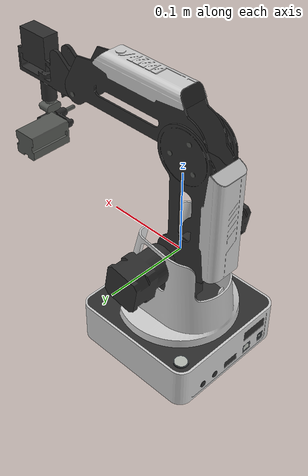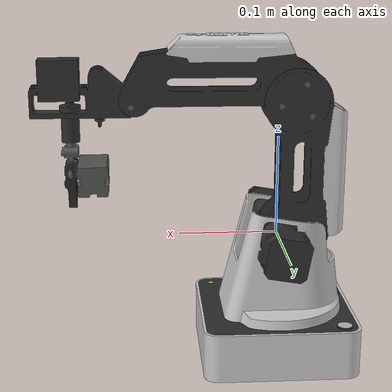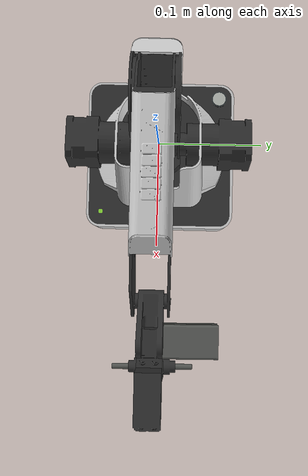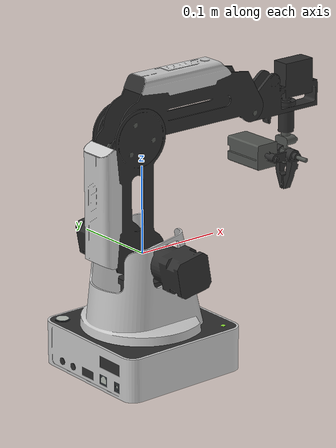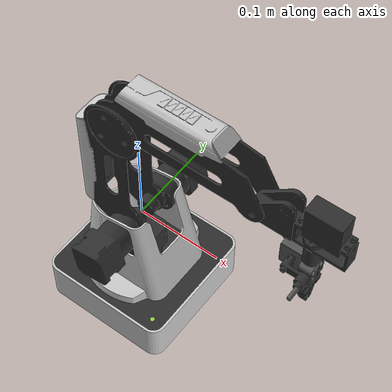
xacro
<?xml version="1.0"?>
<robot name="$(arg name)" xmlns:xacro="http://www.ros.org/wiki/xacro">

  <xacro:arg name="name" default="dobot_magician"/>
  <xacro:arg name="prefix" default=""/>
  <xacro:arg name="use_fake_hardware" default="false"/>
  <xacro:arg name="sim_gazebo" default="false"/>
  <xacro:arg name="sim_gz" default="true"/>
  <xacro:arg name="simulation_controllers" default=""/>
  <xacro:arg name="end_effector" default="gripper"/>

  <xacro:include filename="$(find custom_robots)/models/dobot_magician/dobot_magician_macro.xacro"/>
  <xacro:include filename="$(find custom_robots)/models/dobot_magician/dobot_magician.ros2_control.xacro"/>

  <!-- fixed base, anchor it to the world so it doesn't fall under gravity -->
  <link name="world"/>

  <xacro:dobot_magician parent="world" prefix="$(arg prefix)" end_effector="$(arg end_effector)"/>

  <xacro:dobot_magician_ros2_control
    name="$(arg name)"
    prefix="$(arg prefix)"
    sim_gz="$(arg sim_gz)"
    use_fake_hardware="$(arg use_fake_hardware)"
    end_effector="$(arg end_effector)"/>

  <xacro:if value="$(arg sim_gz)">
    <gazebo>
      <plugin filename="gz_ros2_control-system" name="gz_ros2_control::GazeboSimROS2ControlPlugin">
        <parameters>$(arg simulation_controllers)</parameters>
      </plugin>
    </gazebo>
  </xacro:if>

</robot>

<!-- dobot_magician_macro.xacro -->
<robot xmlns:xacro="http://www.ros.org/wiki/xacro">

  <xacro:property name="link_base_length" value="0.131305"/>
  <xacro:property name="link_2_length" value="0.135"/>
  <xacro:property name="link_3_length" value="0.147"/>
  <xacro:property name="link_4_length" value="0.06"/>

  <xacro:property name="joint_2_offset" value="${20.0/180.0*pi}"/>
  <xacro:property name="joint_3_offset" value="${7.0/180.0*pi}"/>

  <!-- The real meshes don't ship inertia data, so every link gets a plain
       box approximation sized roughly to it. Good enough for stable
       simulation, not meant to be an accurate mass model. -->
  <xacro:macro name="box_inertial" params="mass x y z">
    <inertial>
      <mass value="${mass}"/>
      <inertia
        ixx="${mass/12.0*(y*y+z*z)}" ixy="0.0" ixz="0.0"
        iyy="${mass/12.0*(x*x+z*z)}" iyz="0.0"
        izz="${mass/12.0*(x*x+y*y)}"/>
    </inertial>
  </xacro:macro>

  <xacro:macro name="dobot_armlink" params="link_name visual_mesh collision_mesh base_origin_xyz base_origin_rpy mass box_x box_y box_z">
    <link name="${link_name}">
      <visual>
        <origin xyz="${base_origin_xyz}" rpy="${base_origin_rpy}"/>
        <geometry>
          <mesh filename="package://custom_robots/models/dobot_magician/meshes/visual/${visual_mesh}.dae"/>
        </geometry>
      </visual>
      <collision>
        <origin xyz="${base_origin_xyz}" rpy="${base_origin_rpy}"/>
        <geometry>
          <mesh filename="package://custom_robots/models/dobot_magician/meshes/collision/${collision_mesh}.stl"/>
        </geometry>
      </collision>
      <xacro:box_inertial mass="${mass}" x="${box_x}" y="${box_y}" z="${box_z}"/>
    </link>
  </xacro:macro>

  <xacro:macro name="dobot_armlink_box_collision" params="link_name visual_mesh base_origin_xyz base_origin_rpy mass box_x box_y box_z collision_origin_xyz collision_size">
    <link name="${link_name}">
      <visual>
        <origin xyz="${base_origin_xyz}" rpy="${base_origin_rpy}"/>
        <geometry>
          <mesh filename="package://custom_robots/models/dobot_magician/meshes/visual/${visual_mesh}.dae"/>
        </geometry>
      </visual>
      <collision>
        <origin xyz="${collision_origin_xyz}" rpy="${base_origin_rpy}"/>
        <geometry>
          <box size="${collision_size}"/>
        </geometry>
      </collision>
      <xacro:box_inertial mass="${mass}" x="${box_x}" y="${box_y}" z="${box_z}"/>
    </link>
  </xacro:macro>

  <xacro:macro name="dobot_mimiclink" params="link_name">
    <link name="${link_name}">
      <!-- No collision here on purpose, a zero-size box asserts inside DART
           once physics is stepping. This link just tracks the parallelogram
           and never needs to collide with anything. -->
      <xacro:box_inertial mass="0.001" x="0.01" y="0.01" z="0.01"/>
    </link>
  </xacro:macro>

  <xacro:macro name="dobot_joint" params="joint_name type parent child axis_xyz origin_xyz origin_rpy lower_limit upper_limit">
    <joint name="${joint_name}" type="${type}">
      <parent link="${parent}"/>
      <child link="${child}"/>
      <axis xyz="${axis_xyz}"/>
      <limit effort="2000" velocity="1" lower="${lower_limit}" upper="${upper_limit}"/>
      <origin xyz="${origin_xyz}" rpy="${origin_rpy}"/>
      <dynamics damping="1.0" friction="0"/>
    </joint>
  </xacro:macro>

  <xacro:macro name="dobot_joint_mimic" params="joint_name type parent child axis_xyz origin_xyz origin_rpy lower_limit upper_limit ref_joint">
    <joint name="${joint_name}" type="${type}">
      <parent link="${parent}"/>
      <child link="${child}"/>
      <axis xyz="${axis_xyz}"/>
      <limit effort="2000" velocity="1" lower="${lower_limit}" upper="${upper_limit}"/>
      <origin xyz="${origin_xyz}" rpy="${origin_rpy}"/>
      <dynamics damping="1.0" friction="0"/>
      <mimic joint="${ref_joint}" multiplier="1" offset="0"/>
    </joint>
  </xacro:macro>

  <xacro:macro name="dobot_magician" params="parent prefix:='' end_effector:='gripper'">

    <xacro:dobot_armlink link_name="${prefix}base_link" visual_mesh="magicianBase" collision_mesh="magicianBase"
      base_origin_xyz="0 0 0" base_origin_rpy="0 0 0" mass="1.5" box_x="0.15" box_y="0.15" box_z="0.13"/>
    <joint name="${prefix}base_joint" type="fixed">
      <parent link="${parent}"/>
      <child link="${prefix}base_link"/>
      <origin xyz="0 0 0" rpy="0 0 0"/>
    </joint>

    <xacro:dobot_armlink link_name="${prefix}link_1" visual_mesh="magicianLink1" collision_mesh="magicianLink1"
      base_origin_xyz="0 0 0" base_origin_rpy="0 0 0" mass="0.3" box_x="0.06" box_y="0.06" box_z="0.1"/>
    <xacro:dobot_joint joint_name="${prefix}joint_1" type="revolute"
      parent="${prefix}base_link" child="${prefix}link_1"
      axis_xyz="0 0 1" origin_xyz="0 0 0" origin_rpy="0 0 0"
      lower_limit="${-125.0/180.0*pi}" upper_limit="${125.0/180.0*pi}"/>

    <xacro:dobot_armlink link_name="${prefix}link_2" visual_mesh="magicianLink2" collision_mesh="magicianLink2"
      base_origin_xyz="0 0 0" base_origin_rpy="0 ${-joint_2_offset} 0" mass="0.3" box_x="0.03" box_y="0.03" box_z="0.135"/>
    <xacro:dobot_joint joint_name="${prefix}joint_2" type="revolute"
      parent="${prefix}link_1" child="${prefix}link_2"
      axis_xyz="0 1 0" origin_xyz="0 0 0" origin_rpy="0 0 0"
      lower_limit="${-5.0/180.0*pi}" upper_limit="${90.0/180.0*pi}"/>

    <xacro:dobot_armlink link_name="${prefix}link_3" visual_mesh="magicianLink3" collision_mesh="magicianLink3"
      base_origin_xyz="${link_2_length*sin(joint_3_offset)} 0 ${-link_2_length+(link_2_length-link_2_length*cos(joint_3_offset))}"
      base_origin_rpy="0 ${-joint_2_offset-joint_3_offset} 0" mass="0.2" box_x="0.03" box_y="0.03" box_z="0.147"/>
    <xacro:dobot_joint joint_name="${prefix}joint_3" type="revolute"
      parent="${prefix}link_2" child="${prefix}link_3"
      axis_xyz="0 1 0" origin_xyz="0 0 ${link_2_length}" origin_rpy="0 0 0"
      lower_limit="${-15.0/180.0*pi}" upper_limit="${70.0/180.0*pi}"/>

    <!-- Parallelogram closure, no actuator here, follows joint_2/joint_3 -->
    <xacro:property name="parallelogram_origin_xyz"
      value="${-1*(link_2_length*sin(joint_2_offset)+link_3_length*cos(joint_2_offset+joint_3_offset))} 0 ${link_2_length-1*(link_2_length*cos(joint_2_offset)+link_3_length*sin(joint_2_offset+joint_3_offset))}"/>

    <xacro:dobot_mimiclink link_name="${prefix}link_virtual"/>
    <xacro:dobot_joint_mimic joint_name="${prefix}joint_mimic_1" type="revolute"
      parent="${prefix}link_3" child="${prefix}link_virtual"
      axis_xyz="0 -1 0" origin_xyz="${link_3_length} 0 0" origin_rpy="0 0 0"
      lower_limit="${-5.0/180.0*pi}" upper_limit="${90.0/180.0*pi}" ref_joint="${prefix}joint_2"/>

    <xacro:dobot_armlink link_name="${prefix}link_4" visual_mesh="magicianLink4" collision_mesh="link4_collision"
      base_origin_xyz="${parallelogram_origin_xyz}" base_origin_rpy="0 0 0" mass="0.1" box_x="0.03" box_y="0.03" box_z="0.06"/>
    <xacro:dobot_joint_mimic joint_name="${prefix}joint_mimic_2" type="revolute"
      parent="${prefix}link_virtual" child="${prefix}link_4"
      axis_xyz="0 -1 0" origin_xyz="0 0 0" origin_rpy="0 0 0"
      lower_limit="${-15.0/180.0*pi}" upper_limit="${70.0/180.0*pi}" ref_joint="${prefix}joint_3"/>

    <!-- Real actuated wrist rotation, last of the 4 DOF -->
    <xacro:property name="gripper_core_origin_x"
      value="${-1*(link_2_length*sin(joint_2_offset)+link_3_length*cos(joint_2_offset+joint_3_offset)+link_4_length) + 0.23517+0.0019}"/>
    <xacro:property name="gripper_core_origin_z"
      value="${link_2_length-1*(link_2_length*cos(joint_2_offset)+link_3_length*sin(joint_2_offset+joint_3_offset)) + 0.0497517 - 0.003 - 0.016}"/>
    <xacro:property name="gripper_core_origin_xyz"
      value="${gripper_core_origin_x} 0 ${gripper_core_origin_z}"/>

    <xacro:if value="${end_effector == 'gripper'}">
    <xacro:dobot_armlink link_name="${prefix}link_gripper_core" visual_mesh="gripper_core" collision_mesh="gripper_core"
      base_origin_xyz="${gripper_core_origin_xyz}" base_origin_rpy="0 0 0" mass="0.1" box_x="0.05" box_y="0.05" box_z="0.05"/>
    <xacro:dobot_joint joint_name="${prefix}joint_4" type="revolute"
      parent="${prefix}link_4" child="${prefix}link_gripper_core"
      axis_xyz="0 0 1" origin_xyz="0.06 0 0" origin_rpy="0 0 0"
      lower_limit="${-150.0/180.0*pi}" upper_limit="${150.0/180.0*pi}"/>

    <xacro:dobot_armlink_box_collision link_name="${prefix}link_gripper_jaw_left" visual_mesh="jaw_left"
      base_origin_xyz="${gripper_core_origin_xyz}" base_origin_rpy="0 0 0" mass="0.02" box_x="0.02" box_y="0.01" box_z="0.05"
      collision_origin_xyz="${gripper_core_origin_x - 0.01535} 0 ${gripper_core_origin_z - 0.049}" collision_size="0.045 0.032 0.056"/>
    <xacro:dobot_joint joint_name="${prefix}joint_prismatic_l" type="prismatic"
      parent="${prefix}link_gripper_core" child="${prefix}link_gripper_jaw_left"
      axis_xyz="0 -1 0" origin_xyz="0 0 0" origin_rpy="0 0 0"
      lower_limit="-0.018" upper_limit="0"/>

    <xacro:dobot_armlink_box_collision link_name="${prefix}link_gripper_jaw_right" visual_mesh="jaw_right"
      base_origin_xyz="${gripper_core_origin_xyz}" base_origin_rpy="0 0 0" mass="0.02" box_x="0.02" box_y="0.01" box_z="0.05"
      collision_origin_xyz="${gripper_core_origin_x - 0.01535} 0 ${gripper_core_origin_z - 0.049}" collision_size="0.045 0.032 0.056"/>
    <xacro:dobot_joint_mimic joint_name="${prefix}joint_prismatic_r" type="prismatic"
      parent="${prefix}link_gripper_core" child="${prefix}link_gripper_jaw_right"
      axis_xyz="0 1 0" origin_xyz="0 0 0" origin_rpy="0 0 0"
      lower_limit="-0.018" upper_limit="0" ref_joint="${prefix}joint_prismatic_l"/>

    <!-- Contact sensor for gz_link_attacher, on the jaw itself since
         that's what actually touches a grasped object, not the core -->
    <gazebo reference="${prefix}link_gripper_jaw_left">
      <sensor name="suction_contact" type="contact">
        <always_on>true</always_on>
        <update_rate>100</update_rate>
        <contact>
          <collision>${prefix}link_gripper_jaw_left_collision</collision>
        </contact>
      </sensor>
    </gazebo>

    <gazebo>
      <plugin filename="libgz_mimic_joint.so" name="gz_mimic_joint::MimicJoint">
        <parent_joint>${prefix}joint_prismatic_l</parent_joint>
        <mimic_joint>${prefix}joint_prismatic_r</mimic_joint>
      </plugin>
    </gazebo>
    </xacro:if>

    <!-- The suction cup has no joint and gz_link_attacher grabs through the contact sensor at its tip -->
    <xacro:if value="${end_effector == 'suction_cup'}">
    <xacro:property name="suction_cup_origin_z" value="${gripper_core_origin_z + 0.016}"/>

    <xacro:dobot_armlink_box_collision link_name="${prefix}link_suction_cup" visual_mesh="suction_cup"
      base_origin_xyz="${gripper_core_origin_x} 0 ${suction_cup_origin_z}" base_origin_rpy="0 0 0" mass="0.05" box_x="0.03" box_y="0.03" box_z="0.06"
      collision_origin_xyz="${gripper_core_origin_x} 0 ${suction_cup_origin_z - 0.053}" collision_size="0.02 0.02 0.012"/>
    <xacro:dobot_joint joint_name="${prefix}joint_4" type="revolute"
      parent="${prefix}link_4" child="${prefix}link_suction_cup"
      axis_xyz="0 0 1" origin_xyz="0.06 0 0" origin_rpy="0 0 0"
      lower_limit="${-150.0/180.0*pi}" upper_limit="${150.0/180.0*pi}"/>

    <gazebo reference="${prefix}link_suction_cup">
      <sensor name="suction_contact" type="contact">
        <always_on>true</always_on>
        <update_rate>100</update_rate>
        <contact>
          <collision>${prefix}link_suction_cup_collision</collision>
        </contact>
      </sensor>
    </gazebo>
    </xacro:if>

    <gazebo>
      <plugin filename="libgz_mimic_joint.so" name="gz_mimic_joint::MimicJoint">
        <parent_joint>${prefix}joint_2</parent_joint>
        <mimic_joint>${prefix}joint_mimic_1</mimic_joint>
      </plugin>
      <plugin filename="libgz_mimic_joint.so" name="gz_mimic_joint::MimicJoint">
        <parent_joint>${prefix}joint_3</parent_joint>
        <mimic_joint>${prefix}joint_mimic_2</mimic_joint>
      </plugin>
    </gazebo>

  </xacro:macro>

</robot>
